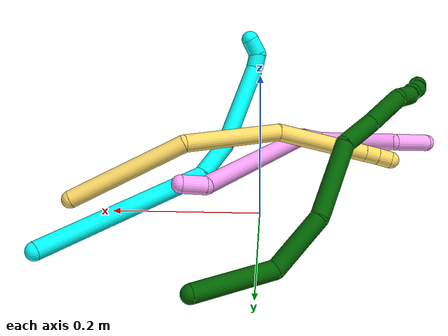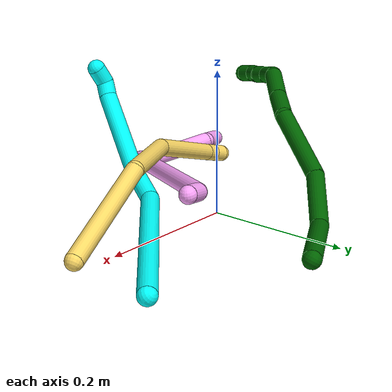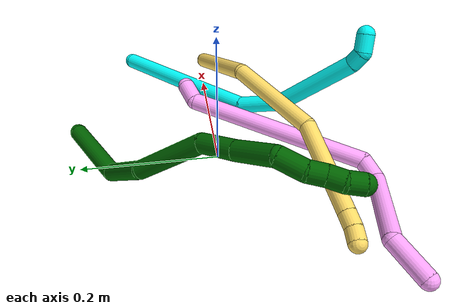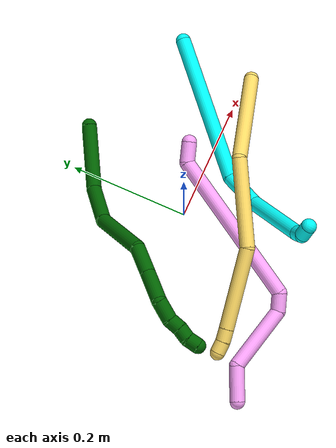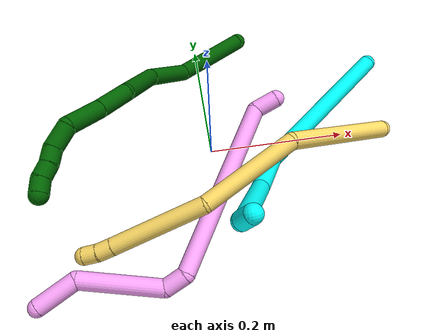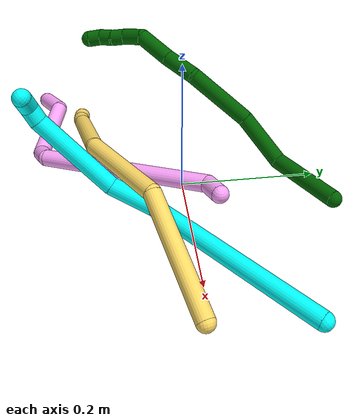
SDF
<sdf version="1.7">
 <world name="default">
  <model name="photoneo_s_sensor">
   <static>1</static>
   <pose>0 0 2 1.57079 1.57079 3.14159</pose>
   <link name="link">
    <inertial><mass>0.1</mass></inertial>
    <sensor name="sensor" type="depth">
     <update_rate>30</update_rate>
     <camera>
      <horizontal_fov>1.22</horizontal_fov>
      <image><width>1920</width><height>1200</height><format>B8G8R8</format></image>
      <clip><near>0.1</near><far>4</far></clip>
      <depth_camera><output>points</output></depth_camera>
     </camera>
     <plugin name="camera_plugin" filename="libgazebo_ros_depth_camera.so">
      <baseline>0.2</baseline>
      <alwaysOn>1</alwaysOn>
      <updateRate>0.0</updateRate>
      <cameraName>camera_ir</cameraName>
      <imageTopicName>/camera/color/image_raw</imageTopicName>
      <cameraInfoTopicName>/camera/color/camera_info</cameraInfoTopicName>
      <depthImageTopicName>/camera/depth/image_raw</depthImageTopicName>
      <depthImageCameraInfoTopicName>/camera/depth/camera_info</depthImageCameraInfoTopicName>
      <pointCloudTopicName>/camera/depth/points</pointCloudTopicName>
      <frameName>fr_optical</frameName>
      <pointCloudCutoff>0.1</pointCloudCutoff>
      <pointCloudCutoffMax>2.0</pointCloudCutoffMax>
      <distortionK1>0</distortionK1>
      <distortionK2>0</distortionK2>
      <distortionK3>0</distortionK3>
      <distortionT1>0</distortionT1>
      <distortionT2>0</distortionT2>
      <CxPrime>0</CxPrime>
      <Cx>0</Cx>
      <Cy>0</Cy>
      <focalLength>0</focalLength>
      <hackBaseline>0</hackBaseline>
     </plugin>
    </sensor>
   </link>
  </model>
  <model name="bin">
   <static>1</static>
   <link name="bottom">
    <collision name="collision-bottom">
     <pose>0 0 -0.01 0 -0 0</pose>
     <geometry><box><size>0.8 0.6 0.02</size></box></geometry>
     <surface>
      <friction><ode><mu>100</mu><mu2>100</mu2></ode></friction>
      <contact><collide_bitmask>65535</collide_bitmask></contact>
     </surface>
    </collision>
   </link>
   <link name="west_wall">
    <collision name="collision-west_wall">
     <pose>-0.41 0 0.1 0 -0 0</pose>
     <geometry><box><size>0.02 0.6 0.2</size></box></geometry>
     <surface>
      <friction><ode><mu>100</mu><mu2>100</mu2></ode></friction>
      <contact><collide_bitmask>65535</collide_bitmask></contact>
     </surface>
    </collision>
   </link>
   <link name="east_wall">
    <collision name="collision-east_wall">
     <pose>0.41 0 0.1 0 -0 0</pose>
     <geometry><box><size>0.02 0.6 0.2</size></box></geometry>
     <surface>
      <friction><ode><mu>100</mu><mu2>100</mu2></ode></friction>
      <contact><collide_bitmask>65535</collide_bitmask></contact>
     </surface>
    </collision>
   </link>
   <link name="south_wall">
    <collision name="collision-south_wall">
     <pose>0 -0.31 0.1 0 -0 0</pose>
     <geometry><box><size>0.8 0.02 0.2</size></box></geometry>
     <surface>
      <friction><ode><mu>100</mu><mu2>100</mu2></ode></friction>
      <contact><collide_bitmask>65535</collide_bitmask></contact>
     </surface>
    </collision>
   </link>
   <link name="north_wall">
    <collision name="collision-north_wall">
     <pose>0 0.31 0.1 0 -0 0</pose>
     <geometry><box><size>0.8 0.02 0.2</size></box></geometry>
     <surface>
      <friction><ode><mu>100</mu><mu2>100</mu2></ode></friction>
      <contact><collide_bitmask>65535</collide_bitmask></contact>
     </surface>
    </collision>
   </link>
  </model>
  <model name="3">
   <static>0</static>
   <link name="3">
    <collision name="collision-cylinder-e_1_1_4">
     <pose>-0.091901 -0.077048 -0.049959 2.14606 -0.785798 -1.30314</pose>
     <geometry><cylinder><radius>0.0125</radius><length>0.259832</length></cylinder></geometry>
     <surface>
      <friction><ode><mu>1.16</mu><mu2>1.16</mu2><slip1>0</slip1><slip2>0</slip2></ode></friction>
      <contact><ode><kp>1e+06</kp><kd>1</kd><max_vel>0</max_vel><min_depth>0.001</min_depth></ode></contact>
     </surface>
    </collision>
    <visual name="visual-cylinder-e_1_1_4">
     <pose>-0.091901 -0.077048 -0.049959 2.14606 -0.785798 -1.30314</pose>
     <geometry><cylinder><radius>0.0125</radius><length>0.259832</length></cylinder></geometry>
     <material><ambient>0.003922 1 0.996078 1</ambient></material>
    </visual>
    <collision name="collision-cylinder-e_2_4_5">
     <pose>-0.195738 -0.181163 -0.113716 2.0422 -0.374344 -0.599588</pose>
     <geometry><cylinder><radius>0.0125</radius><length>0.065282</length></cylinder></geometry>
     <surface>
      <friction><ode><mu>1.16</mu><mu2>1.16</mu2><slip1>0</slip1><slip2>0</slip2></ode></friction>
      <contact><ode><kp>1e+06</kp><kd>1</kd><max_vel>0</max_vel><min_depth>0.001</min_depth></ode></contact>
     </surface>
    </collision>
    <visual name="visual-cylinder-e_2_4_5">
     <pose>-0.195738 -0.181163 -0.113716 2.0422 -0.374344 -0.599588</pose>
     <geometry><cylinder><radius>0.0125</radius><length>0.065282</length></cylinder></geometry>
     <material><ambient>0.003922 1 0.996078 1</ambient></material>
    </visual>
    <collision name="collision-cylinder-e_3_5_6">
     <pose>-0.218154 -0.271271 -0.132957 1.65695 -0.164149 -0.178862</pose>
     <geometry><cylinder><radius>0.0125</radius><length>0.128275</length></cylinder></geometry>
     <surface>
      <friction><ode><mu>1.16</mu><mu2>1.16</mu2><slip1>0</slip1><slip2>0</slip2></ode></friction>
      <contact><ode><kp>1e+06</kp><kd>1</kd><max_vel>0</max_vel><min_depth>0.001</min_depth></ode></contact>
     </surface>
    </collision>
    <visual name="visual-cylinder-e_3_5_6">
     <pose>-0.218154 -0.271271 -0.132957 1.65695 -0.164149 -0.178862</pose>
     <geometry><cylinder><radius>0.0125</radius><length>0.128275</length></cylinder></geometry>
     <material><ambient>0.003922 1 0.996078 1</ambient></material>
    </visual>
    <collision name="collision-cylinder-e_4_6_7">
     <pose>-0.228964 -0.345013 -0.136251 1.37245 -0.030143 -0.024688</pose>
     <geometry><cylinder><radius>0.0125</radius><length>0.021841</length></cylinder></geometry>
     <surface>
      <friction><ode><mu>1.16</mu><mu2>1.16</mu2><slip1>0</slip1><slip2>0</slip2></ode></friction>
      <contact><ode><kp>1e+06</kp><kd>1</kd><max_vel>0</max_vel><min_depth>0.001</min_depth></ode></contact>
     </surface>
    </collision>
    <visual name="visual-cylinder-e_4_6_7">
     <pose>-0.228964 -0.345013 -0.136251 1.37245 -0.030143 -0.024688</pose>
     <geometry><cylinder><radius>0.0125</radius><length>0.021841</length></cylinder></geometry>
     <material><ambient>0.003922 1 0.996078 1</ambient></material>
    </visual>
    <collision name="collision-cylinder-e_5_7_2">
     <pose>-0.221511 -0.364468 -0.130075 1.13973 0.679452 0.445423</pose>
     <geometry><cylinder><radius>0.0125</radius><length>0.02477</length></cylinder></geometry>
     <surface>
      <friction><ode><mu>1.16</mu><mu2>1.16</mu2><slip1>0</slip1><slip2>0</slip2></ode></friction>
      <contact><ode><kp>1e+06</kp><kd>1</kd><max_vel>0</max_vel><min_depth>0.001</min_depth></ode></contact>
     </surface>
    </collision>
    <visual name="visual-cylinder-e_5_7_2">
     <pose>-0.221511 -0.364468 -0.130075 1.13973 0.679452 0.445423</pose>
     <geometry><cylinder><radius>0.0125</radius><length>0.02477</length></cylinder></geometry>
     <material><ambient>0.003922 1 0.996078 1</ambient></material>
    </visual>
    <collision name="collision-sphere-2">
     <pose>-0.213729 -0.373221 -0.126049 0 -0 0</pose>
     <geometry><sphere><radius>0.0125</radius></sphere></geometry>
     <surface>
      <friction><ode><mu>1.16</mu><mu2>1.16</mu2><slip1>0</slip1><slip2>0</slip2></ode></friction>
      <contact><ode><kp>1e+06</kp><kd>1</kd><max_vel>0</max_vel><min_depth>0.001</min_depth></ode></contact>
     </surface>
    </collision>
    <visual name="visual-sphere-2">
     <pose>-0.213729 -0.373221 -0.126049 0 -0 0</pose>
     <geometry><sphere><radius>0.0125</radius></sphere></geometry>
     <material><ambient>0.003922 1 0.996078 1</ambient></material>
    </visual>
    <collision name="collision-sphere-7">
     <pose>-0.229294 -0.355715 -0.1341 0 -0 0</pose>
     <geometry><sphere><radius>0.0125</radius></sphere></geometry>
     <surface>
      <friction><ode><mu>1.16</mu><mu2>1.16</mu2><slip1>0</slip1><slip2>0</slip2></ode></friction>
      <contact><ode><kp>1e+06</kp><kd>1</kd><max_vel>0</max_vel><min_depth>0.001</min_depth></ode></contact>
     </surface>
    </collision>
    <visual name="visual-sphere-7">
     <pose>-0.229294 -0.355715 -0.1341 0 -0 0</pose>
     <geometry><sphere><radius>0.0125</radius></sphere></geometry>
     <material><ambient>0.003922 1 0.996078 1</ambient></material>
    </visual>
    <collision name="collision-sphere-6">
     <pose>-0.228635 -0.334311 -0.138402 0 -0 0</pose>
     <geometry><sphere><radius>0.0125</radius></sphere></geometry>
     <surface>
      <friction><ode><mu>1.16</mu><mu2>1.16</mu2><slip1>0</slip1><slip2>0</slip2></ode></friction>
      <contact><ode><kp>1e+06</kp><kd>1</kd><max_vel>0</max_vel><min_depth>0.001</min_depth></ode></contact>
     </surface>
    </collision>
    <visual name="visual-sphere-6">
     <pose>-0.228635 -0.334311 -0.138402 0 -0 0</pose>
     <geometry><sphere><radius>0.0125</radius></sphere></geometry>
     <material><ambient>0.003922 1 0.996078 1</ambient></material>
    </visual>
    <collision name="collision-sphere-5">
     <pose>-0.207673 -0.20823 -0.127513 0 -0 0</pose>
     <geometry><sphere><radius>0.0125</radius></sphere></geometry>
     <surface>
      <friction><ode><mu>1.16</mu><mu2>1.16</mu2><slip1>0</slip1><slip2>0</slip2></ode></friction>
      <contact><ode><kp>1e+06</kp><kd>1</kd><max_vel>0</max_vel><min_depth>0.001</min_depth></ode></contact>
     </surface>
    </collision>
    <visual name="visual-sphere-5">
     <pose>-0.207673 -0.20823 -0.127513 0 -0 0</pose>
     <geometry><sphere><radius>0.0125</radius></sphere></geometry>
     <material><ambient>0.003922 1 0.996078 1</ambient></material>
    </visual>
    <collision name="collision-sphere-1">
     <geometry><sphere><radius>0.0125</radius></sphere></geometry>
     <surface>
      <friction><ode><mu>1.16</mu><mu2>1.16</mu2><slip1>0</slip1><slip2>0</slip2></ode></friction>
      <contact><ode><kp>1e+06</kp><kd>1</kd><max_vel>0</max_vel><min_depth>0.001</min_depth></ode></contact>
     </surface>
    </collision>
    <visual name="visual-sphere-1">
     <geometry><sphere><radius>0.0125</radius></sphere></geometry>
     <material><ambient>0.003922 1 0.996078 1</ambient></material>
    </visual>
    <collision name="collision-sphere-4">
     <pose>-0.183802 -0.154095 -0.099919 0 -0 0</pose>
     <geometry><sphere><radius>0.0125</radius></sphere></geometry>
     <surface>
      <friction><ode><mu>1.16</mu><mu2>1.16</mu2><slip1>0</slip1><slip2>0</slip2></ode></friction>
      <contact><ode><kp>1e+06</kp><kd>1</kd><max_vel>0</max_vel><min_depth>0.001</min_depth></ode></contact>
     </surface>
    </collision>
    <visual name="visual-sphere-4">
     <pose>-0.183802 -0.154095 -0.099919 0 -0 0</pose>
     <geometry><sphere><radius>0.0125</radius></sphere></geometry>
     <material><ambient>0.003922 1 0.996078 1</ambient></material>
    </visual>
    <inertial>
     <pose>-0.150257 -0.166413 -0.087315 0 -0 0</pose>
     <mass>0.5</mass>
     <inertia>
      <ixx>-0.000591</ixx>
      <ixy>0</ixy>
      <ixz>0</ixz>
      <iyy>-0.00046</iyy>
      <iyz>0</iyz>
      <izz>0.002144</izz>
     </inertia>
    </inertial>
   </link>
   <pose>0.275532 0.124373 0.012359 -0.892134 -0.198954 -0.010146</pose>
  </model>
  <model name="4">
   <static>0</static>
   <link name="4">
    <collision name="collision-cylinder-e_1_1_4">
     <pose>0.014932 -0.004287 0.007168 0.539025 1.06082 0.321215</pose>
     <geometry><cylinder><radius>0.0125</radius><length>0.034218</length></cylinder></geometry>
     <surface>
      <friction><ode><mu>1.16</mu><mu2>1.16</mu2><slip1>0</slip1><slip2>0</slip2></ode></friction>
      <contact><ode><kp>1e+06</kp><kd>1</kd><max_vel>0</max_vel><min_depth>0.001</min_depth></ode></contact>
     </surface>
    </collision>
    <visual name="visual-cylinder-e_1_1_4">
     <pose>0.014932 -0.004287 0.007168 0.539025 1.06082 0.321215</pose>
     <geometry><cylinder><radius>0.0125</radius><length>0.034218</length></cylinder></geometry>
     <material><ambient>1 0.65098 0.996078 1</ambient></material>
    </visual>
    <collision name="collision-cylinder-e_2_4_5">
     <pose>0.096058 -0.116804 0.046192 1.28454 0.530592 0.401042</pose>
     <geometry><cylinder><radius>0.0125</radius><length>0.261611</length></cylinder></geometry>
     <surface>
      <friction><ode><mu>1.16</mu><mu2>1.16</mu2><slip1>0</slip1><slip2>0</slip2></ode></friction>
      <contact><ode><kp>1e+06</kp><kd>1</kd><max_vel>0</max_vel><min_depth>0.001</min_depth></ode></contact>
     </surface>
    </collision>
    <visual name="visual-cylinder-e_2_4_5">
     <pose>0.096058 -0.116804 0.046192 1.28454 0.530592 0.401042</pose>
     <geometry><cylinder><radius>0.0125</radius><length>0.261611</length></cylinder></geometry>
     <material><ambient>1 0.65098 0.996078 1</ambient></material>
    </visual>
    <collision name="collision-cylinder-e_3_5_6">
     <pose>0.17502 -0.229243 0.086276 0.472941 0.944295 0.244891</pose>
     <geometry><cylinder><radius>0.0125</radius><length>0.031525</length></cylinder></geometry>
     <surface>
      <friction><ode><mu>1.16</mu><mu2>1.16</mu2><slip1>0</slip1><slip2>0</slip2></ode></friction>
      <contact><ode><kp>1e+06</kp><kd>1</kd><max_vel>0</max_vel><min_depth>0.001</min_depth></ode></contact>
     </surface>
    </collision>
    <visual name="visual-cylinder-e_3_5_6">
     <pose>0.17502 -0.229243 0.086276 0.472941 0.944295 0.244891</pose>
     <geometry><cylinder><radius>0.0125</radius><length>0.031525</length></cylinder></geometry>
     <material><ambient>1 0.65098 0.996078 1</ambient></material>
    </visual>
    <collision name="collision-cylinder-e_4_6_7">
     <pose>0.242375 -0.217885 0.101776 -1.13377 1.26584 -0.873794</pose>
     <geometry><cylinder><radius>0.0125</radius><length>0.114452</length></cylinder></geometry>
     <surface>
      <friction><ode><mu>1.16</mu><mu2>1.16</mu2><slip1>0</slip1><slip2>0</slip2></ode></friction>
      <contact><ode><kp>1e+06</kp><kd>1</kd><max_vel>0</max_vel><min_depth>0.001</min_depth></ode></contact>
     </surface>
    </collision>
    <visual name="visual-cylinder-e_4_6_7">
     <pose>0.242375 -0.217885 0.101776 -1.13377 1.26584 -0.873794</pose>
     <geometry><cylinder><radius>0.0125</radius><length>0.114452</length></cylinder></geometry>
     <material><ambient>1 0.65098 0.996078 1</ambient></material>
    </visual>
    <collision name="collision-cylinder-e_5_7_2">
     <pose>0.321329 -0.212983 0.12084 0.735256 0.992701 0.411263</pose>
     <geometry><cylinder><radius>0.0125</radius><length>0.058193</length></cylinder></geometry>
     <surface>
      <friction><ode><mu>1.16</mu><mu2>1.16</mu2><slip1>0</slip1><slip2>0</slip2></ode></friction>
      <contact><ode><kp>1e+06</kp><kd>1</kd><max_vel>0</max_vel><min_depth>0.001</min_depth></ode></contact>
     </surface>
    </collision>
    <visual name="visual-cylinder-e_5_7_2">
     <pose>0.321329 -0.212983 0.12084 0.735256 0.992701 0.411263</pose>
     <geometry><cylinder><radius>0.0125</radius><length>0.058193</length></cylinder></geometry>
     <material><ambient>1 0.65098 0.996078 1</ambient></material>
    </visual>
    <collision name="collision-sphere-2">
     <pose>0.345698 -0.223648 0.132632 0 -0 0</pose>
     <geometry><sphere><radius>0.0125</radius></sphere></geometry>
     <surface>
      <friction><ode><mu>1.16</mu><mu2>1.16</mu2><slip1>0</slip1><slip2>0</slip2></ode></friction>
      <contact><ode><kp>1e+06</kp><kd>1</kd><max_vel>0</max_vel><min_depth>0.001</min_depth></ode></contact>
     </surface>
    </collision>
    <visual name="visual-sphere-2">
     <pose>0.345698 -0.223648 0.132632 0 -0 0</pose>
     <geometry><sphere><radius>0.0125</radius></sphere></geometry>
     <material><ambient>1 0.65098 0.996078 1</ambient></material>
    </visual>
    <collision name="collision-sphere-7">
     <pose>0.296961 -0.202318 0.109048 0 -0 0</pose>
     <geometry><sphere><radius>0.0125</radius></sphere></geometry>
     <surface>
      <friction><ode><mu>1.16</mu><mu2>1.16</mu2><slip1>0</slip1><slip2>0</slip2></ode></friction>
      <contact><ode><kp>1e+06</kp><kd>1</kd><max_vel>0</max_vel><min_depth>0.001</min_depth></ode></contact>
     </surface>
    </collision>
    <visual name="visual-sphere-7">
     <pose>0.296961 -0.202318 0.109048 0 -0 0</pose>
     <geometry><sphere><radius>0.0125</radius></sphere></geometry>
     <material><ambient>1 0.65098 0.996078 1</ambient></material>
    </visual>
    <collision name="collision-sphere-6">
     <pose>0.187789 -0.233453 0.094504 0 -0 0</pose>
     <geometry><sphere><radius>0.0125</radius></sphere></geometry>
     <surface>
      <friction><ode><mu>1.16</mu><mu2>1.16</mu2><slip1>0</slip1><slip2>0</slip2></ode></friction>
      <contact><ode><kp>1e+06</kp><kd>1</kd><max_vel>0</max_vel><min_depth>0.001</min_depth></ode></contact>
     </surface>
    </collision>
    <visual name="visual-sphere-6">
     <pose>0.187789 -0.233453 0.094504 0 -0 0</pose>
     <geometry><sphere><radius>0.0125</radius></sphere></geometry>
     <material><ambient>1 0.65098 0.996078 1</ambient></material>
    </visual>
    <collision name="collision-sphere-5">
     <pose>0.162251 -0.225033 0.078049 0 -0 0</pose>
     <geometry><sphere><radius>0.0125</radius></sphere></geometry>
     <surface>
      <friction><ode><mu>1.16</mu><mu2>1.16</mu2><slip1>0</slip1><slip2>0</slip2></ode></friction>
      <contact><ode><kp>1e+06</kp><kd>1</kd><max_vel>0</max_vel><min_depth>0.001</min_depth></ode></contact>
     </surface>
    </collision>
    <visual name="visual-sphere-5">
     <pose>0.162251 -0.225033 0.078049 0 -0 0</pose>
     <geometry><sphere><radius>0.0125</radius></sphere></geometry>
     <material><ambient>1 0.65098 0.996078 1</ambient></material>
    </visual>
    <collision name="collision-sphere-1">
     <geometry><sphere><radius>0.0125</radius></sphere></geometry>
     <surface>
      <friction><ode><mu>1.16</mu><mu2>1.16</mu2><slip1>0</slip1><slip2>0</slip2></ode></friction>
      <contact><ode><kp>1e+06</kp><kd>1</kd><max_vel>0</max_vel><min_depth>0.001</min_depth></ode></contact>
     </surface>
    </collision>
    <visual name="visual-sphere-1">
     <geometry><sphere><radius>0.0125</radius></sphere></geometry>
     <material><ambient>1 0.65098 0.996078 1</ambient></material>
    </visual>
    <collision name="collision-sphere-4">
     <pose>0.029864 -0.008574 0.014335 0 -0 0</pose>
     <geometry><sphere><radius>0.0125</radius></sphere></geometry>
     <surface>
      <friction><ode><mu>1.16</mu><mu2>1.16</mu2><slip1>0</slip1><slip2>0</slip2></ode></friction>
      <contact><ode><kp>1e+06</kp><kd>1</kd><max_vel>0</max_vel><min_depth>0.001</min_depth></ode></contact>
     </surface>
    </collision>
    <visual name="visual-sphere-4">
     <pose>0.029864 -0.008574 0.014335 0 -0 0</pose>
     <geometry><sphere><radius>0.0125</radius></sphere></geometry>
     <material><ambient>1 0.65098 0.996078 1</ambient></material>
    </visual>
    <inertial>
     <pose>0.155196 -0.150525 0.06746 0 -0 0</pose>
     <mass>0.5</mass>
     <inertia>
      <ixx>0.00174</ixx>
      <ixy>0</ixy>
      <ixz>0</ixz>
      <iyy>0.001285</iyy>
      <iyz>0</iyz>
      <izz>0.000321</izz>
     </inertia>
    </inertial>
   </link>
   <pose>0.101809 0.035637 0.062665 3.14032 -0.228469 -3.0851</pose>
  </model>
  <model name="5">
   <static>0</static>
   <link name="5">
    <collision name="collision-cylinder-e_1_1_4">
     <pose>-0.033682 -0.011373 0.079216 0.142599 -0.398368 -0.028832</pose>
     <geometry><cylinder><radius>0.0125</radius><length>0.173655</length></cylinder></geometry>
     <surface>
      <friction><ode><mu>1.16</mu><mu2>1.16</mu2><slip1>0</slip1><slip2>0</slip2></ode></friction>
      <contact><ode><kp>1e+06</kp><kd>1</kd><max_vel>0</max_vel><min_depth>0.001</min_depth></ode></contact>
     </surface>
    </collision>
    <visual name="visual-cylinder-e_1_1_4">
     <pose>-0.033682 -0.011373 0.079216 0.142599 -0.398368 -0.028832</pose>
     <geometry><cylinder><radius>0.0125</radius><length>0.173655</length></cylinder></geometry>
     <material><ambient>1 0.858824 0.4 1</ambient></material>
    </visual>
    <collision name="collision-cylinder-e_2_4_5">
     <pose>-0.119298 -0.052931 0.20238 0.601824 -0.772279 -0.251007</pose>
     <geometry><cylinder><radius>0.0125</radius><length>0.148858</length></cylinder></geometry>
     <surface>
      <friction><ode><mu>1.16</mu><mu2>1.16</mu2><slip1>0</slip1><slip2>0</slip2></ode></friction>
      <contact><ode><kp>1e+06</kp><kd>1</kd><max_vel>0</max_vel><min_depth>0.001</min_depth></ode></contact>
     </surface>
    </collision>
    <visual name="visual-cylinder-e_2_4_5">
     <pose>-0.119298 -0.052931 0.20238 0.601824 -0.772279 -0.251007</pose>
     <geometry><cylinder><radius>0.0125</radius><length>0.148858</length></cylinder></geometry>
     <material><ambient>1 0.858824 0.4 1</ambient></material>
    </visual>
    <collision name="collision-cylinder-e_3_5_6">
     <pose>-0.231955 -0.089582 0.275865 0.21554 -1.10881 -0.133777</pose>
     <geometry><cylinder><radius>0.0125</radius><length>0.13567</length></cylinder></geometry>
     <surface>
      <friction><ode><mu>1.16</mu><mu2>1.16</mu2><slip1>0</slip1><slip2>0</slip2></ode></friction>
      <contact><ode><kp>1e+06</kp><kd>1</kd><max_vel>0</max_vel><min_depth>0.001</min_depth></ode></contact>
     </surface>
    </collision>
    <visual name="visual-cylinder-e_3_5_6">
     <pose>-0.231955 -0.089582 0.275865 0.21554 -1.10881 -0.133777</pose>
     <geometry><cylinder><radius>0.0125</radius><length>0.13567</length></cylinder></geometry>
     <material><ambient>1 0.858824 0.4 1</ambient></material>
    </visual>
    <collision name="collision-cylinder-e_4_6_7">
     <pose>-0.302316 -0.096863 0.310163 0.169294 -1.10613 -0.104664</pose>
     <geometry><cylinder><radius>0.0125</radius><length>0.02156</length></cylinder></geometry>
     <surface>
      <friction><ode><mu>1.16</mu><mu2>1.16</mu2><slip1>0</slip1><slip2>0</slip2></ode></friction>
      <contact><ode><kp>1e+06</kp><kd>1</kd><max_vel>0</max_vel><min_depth>0.001</min_depth></ode></contact>
     </surface>
    </collision>
    <visual name="visual-cylinder-e_4_6_7">
     <pose>-0.302316 -0.096863 0.310163 0.169294 -1.10613 -0.104664</pose>
     <geometry><cylinder><radius>0.0125</radius><length>0.02156</length></cylinder></geometry>
     <material><ambient>1 0.858824 0.4 1</ambient></material>
    </visual>
    <collision name="collision-cylinder-e_5_7_2">
     <pose>-0.320937 -0.096631 0.319483 -0.225461 -1.09081 0.137176</pose>
     <geometry><cylinder><radius>0.0125</radius><length>0.020257</length></cylinder></geometry>
     <surface>
      <friction><ode><mu>1.16</mu><mu2>1.16</mu2><slip1>0</slip1><slip2>0</slip2></ode></friction>
      <contact><ode><kp>1e+06</kp><kd>1</kd><max_vel>0</max_vel><min_depth>0.001</min_depth></ode></contact>
     </surface>
    </collision>
    <visual name="visual-cylinder-e_5_7_2">
     <pose>-0.320937 -0.096631 0.319483 -0.225461 -1.09081 0.137176</pose>
     <geometry><cylinder><radius>0.0125</radius><length>0.020257</length></cylinder></geometry>
     <material><ambient>1 0.858824 0.4 1</ambient></material>
    </visual>
    <collision name="collision-sphere-2">
     <pose>-0.329921 -0.095585 0.324042 0 -0 0</pose>
     <geometry><sphere><radius>0.0125</radius></sphere></geometry>
     <surface>
      <friction><ode><mu>1.16</mu><mu2>1.16</mu2><slip1>0</slip1><slip2>0</slip2></ode></friction>
      <contact><ode><kp>1e+06</kp><kd>1</kd><max_vel>0</max_vel><min_depth>0.001</min_depth></ode></contact>
     </surface>
    </collision>
    <visual name="visual-sphere-2">
     <pose>-0.329921 -0.095585 0.324042 0 -0 0</pose>
     <geometry><sphere><radius>0.0125</radius></sphere></geometry>
     <material><ambient>1 0.858824 0.4 1</ambient></material>
    </visual>
    <collision name="collision-sphere-7">
     <pose>-0.311953 -0.097677 0.314925 0 -0 0</pose>
     <geometry><sphere><radius>0.0125</radius></sphere></geometry>
     <surface>
      <friction><ode><mu>1.16</mu><mu2>1.16</mu2><slip1>0</slip1><slip2>0</slip2></ode></friction>
      <contact><ode><kp>1e+06</kp><kd>1</kd><max_vel>0</max_vel><min_depth>0.001</min_depth></ode></contact>
     </surface>
    </collision>
    <visual name="visual-sphere-7">
     <pose>-0.311953 -0.097677 0.314925 0 -0 0</pose>
     <geometry><sphere><radius>0.0125</radius></sphere></geometry>
     <material><ambient>1 0.858824 0.4 1</ambient></material>
    </visual>
    <collision name="collision-sphere-6">
     <pose>-0.292679 -0.096049 0.305401 0 -0 0</pose>
     <geometry><sphere><radius>0.0125</radius></sphere></geometry>
     <surface>
      <friction><ode><mu>1.16</mu><mu2>1.16</mu2><slip1>0</slip1><slip2>0</slip2></ode></friction>
      <contact><ode><kp>1e+06</kp><kd>1</kd><max_vel>0</max_vel><min_depth>0.001</min_depth></ode></contact>
     </surface>
    </collision>
    <visual name="visual-sphere-6">
     <pose>-0.292679 -0.096049 0.305401 0 -0 0</pose>
     <geometry><sphere><radius>0.0125</radius></sphere></geometry>
     <material><ambient>1 0.858824 0.4 1</ambient></material>
    </visual>
    <collision name="collision-sphere-5">
     <pose>-0.171232 -0.083115 0.246328 0 -0 0</pose>
     <geometry><sphere><radius>0.0125</radius></sphere></geometry>
     <surface>
      <friction><ode><mu>1.16</mu><mu2>1.16</mu2><slip1>0</slip1><slip2>0</slip2></ode></friction>
      <contact><ode><kp>1e+06</kp><kd>1</kd><max_vel>0</max_vel><min_depth>0.001</min_depth></ode></contact>
     </surface>
    </collision>
    <visual name="visual-sphere-5">
     <pose>-0.171232 -0.083115 0.246328 0 -0 0</pose>
     <geometry><sphere><radius>0.0125</radius></sphere></geometry>
     <material><ambient>1 0.858824 0.4 1</ambient></material>
    </visual>
    <collision name="collision-sphere-1">
     <geometry><sphere><radius>0.0125</radius></sphere></geometry>
     <surface>
      <friction><ode><mu>1.16</mu><mu2>1.16</mu2><slip1>0</slip1><slip2>0</slip2></ode></friction>
      <contact><ode><kp>1e+06</kp><kd>1</kd><max_vel>0</max_vel><min_depth>0.001</min_depth></ode></contact>
     </surface>
    </collision>
    <visual name="visual-sphere-1">
     <geometry><sphere><radius>0.0125</radius></sphere></geometry>
     <material><ambient>1 0.858824 0.4 1</ambient></material>
    </visual>
    <collision name="collision-sphere-4">
     <pose>-0.067363 -0.022747 0.158432 0 -0 0</pose>
     <geometry><sphere><radius>0.0125</radius></sphere></geometry>
     <surface>
      <friction><ode><mu>1.16</mu><mu2>1.16</mu2><slip1>0</slip1><slip2>0</slip2></ode></friction>
      <contact><ode><kp>1e+06</kp><kd>1</kd><max_vel>0</max_vel><min_depth>0.001</min_depth></ode></contact>
     </surface>
    </collision>
    <visual name="visual-sphere-4">
     <pose>-0.067363 -0.022747 0.158432 0 -0 0</pose>
     <geometry><sphere><radius>0.0125</radius></sphere></geometry>
     <material><ambient>1 0.858824 0.4 1</ambient></material>
    </visual>
    <inertial>
     <pose>-0.136192 -0.052107 0.188935 0 -0 0</pose>
     <mass>0.5</mass>
     <inertia>
      <ixx>0.000599</ixx>
      <ixy>0</ixy>
      <ixz>0</ixz>
      <iyy>0.000824</iyy>
      <iyz>0</iyz>
      <izz>0.000779</izz>
     </inertia>
    </inertial>
   </link>
   <pose>0.26017 -0.00813 0.012174 0.14667 -0.750285 -0.008433</pose>
  </model>
  <model name="6">
   <static>0</static>
   <link name="6">
    <collision name="collision-cylinder-e_1_1_4">
     <pose>-0.052463 -0.01011 0.015263 0.585055 -1.23505 -0.421415</pose>
     <geometry><cylinder><radius>0.0125</radius><length>0.111131</length></cylinder></geometry>
     <surface>
      <friction><ode><mu>1.16</mu><mu2>1.16</mu2><slip1>0</slip1><slip2>0</slip2></ode></friction>
      <contact><ode><kp>1e+06</kp><kd>1</kd><max_vel>0</max_vel><min_depth>0.001</min_depth></ode></contact>
     </surface>
    </collision>
    <visual name="visual-cylinder-e_1_1_4">
     <pose>-0.052463 -0.01011 0.015263 0.585055 -1.23505 -0.421415</pose>
     <geometry><cylinder><radius>0.0125</radius><length>0.111131</length></cylinder></geometry>
     <material><ambient>0 0.392157 0.003922 1</ambient></material>
    </visual>
    <collision name="collision-cylinder-e_2_4_5">
     <pose>-0.128453 -0.041295 0.057566 0.662042 -0.601445 -0.212359</pose>
     <geometry><cylinder><radius>0.0125</radius><length>0.083159</length></cylinder></geometry>
     <surface>
      <friction><ode><mu>1.16</mu><mu2>1.16</mu2><slip1>0</slip1><slip2>0</slip2></ode></friction>
      <contact><ode><kp>1e+06</kp><kd>1</kd><max_vel>0</max_vel><min_depth>0.001</min_depth></ode></contact>
     </surface>
    </collision>
    <visual name="visual-cylinder-e_2_4_5">
     <pose>-0.128453 -0.041295 0.057566 0.662042 -0.601445 -0.212359</pose>
     <geometry><cylinder><radius>0.0125</radius><length>0.083159</length></cylinder></geometry>
     <material><ambient>0 0.392157 0.003922 1</ambient></material>
    </visual>
    <collision name="collision-cylinder-e_3_5_6">
     <pose>-0.171397 -0.104021 0.109876 1.02546 -0.379278 -0.215276</pose>
     <geometry><cylinder><radius>0.0125</radius><length>0.10489</length></cylinder></geometry>
     <surface>
      <friction><ode><mu>1.16</mu><mu2>1.16</mu2><slip1>0</slip1><slip2>0</slip2></ode></friction>
      <contact><ode><kp>1e+06</kp><kd>1</kd><max_vel>0</max_vel><min_depth>0.001</min_depth></ode></contact>
     </surface>
    </collision>
    <visual name="visual-cylinder-e_3_5_6">
     <pose>-0.171397 -0.104021 0.109876 1.02546 -0.379278 -0.215276</pose>
     <geometry><cylinder><radius>0.0125</radius><length>0.10489</length></cylinder></geometry>
     <material><ambient>0 0.392157 0.003922 1</ambient></material>
    </visual>
    <collision name="collision-cylinder-e_4_6_7">
     <pose>-0.210416 -0.158825 0.144843 0.93549 -0.87589 -0.464541</pose>
     <geometry><cylinder><radius>0.0125</radius><length>0.051036</length></cylinder></geometry>
     <surface>
      <friction><ode><mu>1.16</mu><mu2>1.16</mu2><slip1>0</slip1><slip2>0</slip2></ode></friction>
      <contact><ode><kp>1e+06</kp><kd>1</kd><max_vel>0</max_vel><min_depth>0.001</min_depth></ode></contact>
     </surface>
    </collision>
    <visual name="visual-cylinder-e_4_6_7">
     <pose>-0.210416 -0.158825 0.144843 0.93549 -0.87589 -0.464541</pose>
     <geometry><cylinder><radius>0.0125</radius><length>0.051036</length></cylinder></geometry>
     <material><ambient>0 0.392157 0.003922 1</ambient></material>
    </visual>
    <collision name="collision-cylinder-e_5_7_8">
     <pose>-0.249952 -0.186531 0.167101 0.858762 -0.803511 -0.384267</pose>
     <geometry><cylinder><radius>0.0125</radius><length>0.055391</length></cylinder></geometry>
     <surface>
      <friction><ode><mu>1.16</mu><mu2>1.16</mu2><slip1>0</slip1><slip2>0</slip2></ode></friction>
      <contact><ode><kp>1e+06</kp><kd>1</kd><max_vel>0</max_vel><min_depth>0.001</min_depth></ode></contact>
     </surface>
    </collision>
    <visual name="visual-cylinder-e_5_7_8">
     <pose>-0.249952 -0.186531 0.167101 0.858762 -0.803511 -0.384267</pose>
     <geometry><cylinder><radius>0.0125</radius><length>0.055391</length></cylinder></geometry>
     <material><ambient>0 0.392157 0.003922 1</ambient></material>
    </visual>
    <collision name="collision-cylinder-e_6_8_9">
     <pose>-0.284536 -0.208857 0.177914 1.79206 -1.07272 -1.27811</pose>
     <geometry><cylinder><radius>0.0125</radius><length>0.033349</length></cylinder></geometry>
     <surface>
      <friction><ode><mu>1.16</mu><mu2>1.16</mu2><slip1>0</slip1><slip2>0</slip2></ode></friction>
      <contact><ode><kp>1e+06</kp><kd>1</kd><max_vel>0</max_vel><min_depth>0.001</min_depth></ode></contact>
     </surface>
    </collision>
    <visual name="visual-cylinder-e_6_8_9">
     <pose>-0.284536 -0.208857 0.177914 1.79206 -1.07272 -1.27811</pose>
     <geometry><cylinder><radius>0.0125</radius><length>0.033349</length></cylinder></geometry>
     <material><ambient>0 0.392157 0.003922 1</ambient></material>
    </visual>
    <collision name="collision-cylinder-e_7_9_10">
     <pose>-0.30618 -0.223902 0.17353 1.9184 -0.735188 -1.00434</pose>
     <geometry><cylinder><radius>0.0125</radius><length>0.020859</length></cylinder></geometry>
     <surface>
      <friction><ode><mu>1.16</mu><mu2>1.16</mu2><slip1>0</slip1><slip2>0</slip2></ode></friction>
      <contact><ode><kp>1e+06</kp><kd>1</kd><max_vel>0</max_vel><min_depth>0.001</min_depth></ode></contact>
     </surface>
    </collision>
    <visual name="visual-cylinder-e_7_9_10">
     <pose>-0.30618 -0.223902 0.17353 1.9184 -0.735188 -1.00434</pose>
     <geometry><cylinder><radius>0.0125</radius><length>0.020859</length></cylinder></geometry>
     <material><ambient>0 0.392157 0.003922 1</ambient></material>
    </visual>
    <collision name="collision-cylinder-e_8_10_11">
     <pose>-0.32128 -0.237097 0.170027 1.71644 -0.934669 -1.05719</pose>
     <geometry><cylinder><radius>0.0125</radius><length>0.020151</length></cylinder></geometry>
     <surface>
      <friction><ode><mu>1.16</mu><mu2>1.16</mu2><slip1>0</slip1><slip2>0</slip2></ode></friction>
      <contact><ode><kp>1e+06</kp><kd>1</kd><max_vel>0</max_vel><min_depth>0.001</min_depth></ode></contact>
     </surface>
    </collision>
    <visual name="visual-cylinder-e_8_10_11">
     <pose>-0.32128 -0.237097 0.170027 1.71644 -0.934669 -1.05719</pose>
     <geometry><cylinder><radius>0.0125</radius><length>0.020151</length></cylinder></geometry>
     <material><ambient>0 0.392157 0.003922 1</ambient></material>
    </visual>
    <collision name="collision-cylinder-e_9_11_2">
     <pose>-0.335207 -0.250575 0.166099 1.95545 -0.620262 -0.887664</pose>
     <geometry><cylinder><radius>0.0125</radius><length>0.020034</length></cylinder></geometry>
     <surface>
      <friction><ode><mu>1.16</mu><mu2>1.16</mu2><slip1>0</slip1><slip2>0</slip2></ode></friction>
      <contact><ode><kp>1e+06</kp><kd>1</kd><max_vel>0</max_vel><min_depth>0.001</min_depth></ode></contact>
     </surface>
    </collision>
    <visual name="visual-cylinder-e_9_11_2">
     <pose>-0.335207 -0.250575 0.166099 1.95545 -0.620262 -0.887664</pose>
     <geometry><cylinder><radius>0.0125</radius><length>0.020034</length></cylinder></geometry>
     <material><ambient>0 0.392157 0.003922 1</ambient></material>
    </visual>
    <collision name="collision-sphere-2">
     <pose>-0.341029 -0.258131 0.163041 0 -0 0</pose>
     <geometry><sphere><radius>0.0125</radius></sphere></geometry>
     <surface>
      <friction><ode><mu>1.16</mu><mu2>1.16</mu2><slip1>0</slip1><slip2>0</slip2></ode></friction>
      <contact><ode><kp>1e+06</kp><kd>1</kd><max_vel>0</max_vel><min_depth>0.001</min_depth></ode></contact>
     </surface>
    </collision>
    <visual name="visual-sphere-2">
     <pose>-0.341029 -0.258131 0.163041 0 -0 0</pose>
     <geometry><sphere><radius>0.0125</radius></sphere></geometry>
     <material><ambient>0 0.392157 0.003922 1</ambient></material>
    </visual>
    <collision name="collision-sphere-11">
     <pose>-0.329384 -0.24302 0.169158 0 -0 0</pose>
     <geometry><sphere><radius>0.0125</radius></sphere></geometry>
     <surface>
      <friction><ode><mu>1.16</mu><mu2>1.16</mu2><slip1>0</slip1><slip2>0</slip2></ode></friction>
      <contact><ode><kp>1e+06</kp><kd>1</kd><max_vel>0</max_vel><min_depth>0.001</min_depth></ode></contact>
     </surface>
    </collision>
    <visual name="visual-sphere-11">
     <pose>-0.329384 -0.24302 0.169158 0 -0 0</pose>
     <geometry><sphere><radius>0.0125</radius></sphere></geometry>
     <material><ambient>0 0.392157 0.003922 1</ambient></material>
    </visual>
    <collision name="collision-sphere-10">
     <pose>-0.313175 -0.231175 0.170895 0 -0 0</pose>
     <geometry><sphere><radius>0.0125</radius></sphere></geometry>
     <surface>
      <friction><ode><mu>1.16</mu><mu2>1.16</mu2><slip1>0</slip1><slip2>0</slip2></ode></friction>
      <contact><ode><kp>1e+06</kp><kd>1</kd><max_vel>0</max_vel><min_depth>0.001</min_depth></ode></contact>
     </surface>
    </collision>
    <visual name="visual-sphere-10">
     <pose>-0.313175 -0.231175 0.170895 0 -0 0</pose>
     <geometry><sphere><radius>0.0125</radius></sphere></geometry>
     <material><ambient>0 0.392157 0.003922 1</ambient></material>
    </visual>
    <collision name="collision-sphere-9">
     <pose>-0.299184 -0.216629 0.176166 0 -0 0</pose>
     <geometry><sphere><radius>0.0125</radius></sphere></geometry>
     <surface>
      <friction><ode><mu>1.16</mu><mu2>1.16</mu2><slip1>0</slip1><slip2>0</slip2></ode></friction>
      <contact><ode><kp>1e+06</kp><kd>1</kd><max_vel>0</max_vel><min_depth>0.001</min_depth></ode></contact>
     </surface>
    </collision>
    <visual name="visual-sphere-9">
     <pose>-0.299184 -0.216629 0.176166 0 -0 0</pose>
     <geometry><sphere><radius>0.0125</radius></sphere></geometry>
     <material><ambient>0 0.392157 0.003922 1</ambient></material>
    </visual>
    <collision name="collision-sphere-4">
     <pose>-0.104926 -0.02022 0.030525 0 -0 0</pose>
     <geometry><sphere><radius>0.0125</radius></sphere></geometry>
     <surface>
      <friction><ode><mu>1.16</mu><mu2>1.16</mu2><slip1>0</slip1><slip2>0</slip2></ode></friction>
      <contact><ode><kp>1e+06</kp><kd>1</kd><max_vel>0</max_vel><min_depth>0.001</min_depth></ode></contact>
     </surface>
    </collision>
    <visual name="visual-sphere-4">
     <pose>-0.104926 -0.02022 0.030525 0 -0 0</pose>
     <geometry><sphere><radius>0.0125</radius></sphere></geometry>
     <material><ambient>0 0.392157 0.003922 1</ambient></material>
    </visual>
    <collision name="collision-sphere-1">
     <geometry><sphere><radius>0.0125</radius></sphere></geometry>
     <surface>
      <friction><ode><mu>1.16</mu><mu2>1.16</mu2><slip1>0</slip1><slip2>0</slip2></ode></friction>
      <contact><ode><kp>1e+06</kp><kd>1</kd><max_vel>0</max_vel><min_depth>0.001</min_depth></ode></contact>
     </surface>
    </collision>
    <visual name="visual-sphere-1">
     <geometry><sphere><radius>0.0125</radius></sphere></geometry>
     <material><ambient>0 0.392157 0.003922 1</ambient></material>
    </visual>
    <collision name="collision-sphere-8">
     <pose>-0.269887 -0.201085 0.179662 0 -0 0</pose>
     <geometry><sphere><radius>0.0125</radius></sphere></geometry>
     <surface>
      <friction><ode><mu>1.16</mu><mu2>1.16</mu2><slip1>0</slip1><slip2>0</slip2></ode></friction>
      <contact><ode><kp>1e+06</kp><kd>1</kd><max_vel>0</max_vel><min_depth>0.001</min_depth></ode></contact>
     </surface>
    </collision>
    <visual name="visual-sphere-8">
     <pose>-0.269887 -0.201085 0.179662 0 -0 0</pose>
     <geometry><sphere><radius>0.0125</radius></sphere></geometry>
     <material><ambient>0 0.392157 0.003922 1</ambient></material>
    </visual>
    <collision name="collision-sphere-5">
     <pose>-0.15198 -0.06237 0.084606 0 -0 0</pose>
     <geometry><sphere><radius>0.0125</radius></sphere></geometry>
     <surface>
      <friction><ode><mu>1.16</mu><mu2>1.16</mu2><slip1>0</slip1><slip2>0</slip2></ode></friction>
      <contact><ode><kp>1e+06</kp><kd>1</kd><max_vel>0</max_vel><min_depth>0.001</min_depth></ode></contact>
     </surface>
    </collision>
    <visual name="visual-sphere-5">
     <pose>-0.15198 -0.06237 0.084606 0 -0 0</pose>
     <geometry><sphere><radius>0.0125</radius></sphere></geometry>
     <material><ambient>0 0.392157 0.003922 1</ambient></material>
    </visual>
    <collision name="collision-sphere-6">
     <pose>-0.190815 -0.145673 0.135146 0 -0 0</pose>
     <geometry><sphere><radius>0.0125</radius></sphere></geometry>
     <surface>
      <friction><ode><mu>1.16</mu><mu2>1.16</mu2><slip1>0</slip1><slip2>0</slip2></ode></friction>
      <contact><ode><kp>1e+06</kp><kd>1</kd><max_vel>0</max_vel><min_depth>0.001</min_depth></ode></contact>
     </surface>
    </collision>
    <visual name="visual-sphere-6">
     <pose>-0.190815 -0.145673 0.135146 0 -0 0</pose>
     <geometry><sphere><radius>0.0125</radius></sphere></geometry>
     <material><ambient>0 0.392157 0.003922 1</ambient></material>
    </visual>
    <collision name="collision-sphere-7">
     <pose>-0.230017 -0.171976 0.154539 0 -0 0</pose>
     <geometry><sphere><radius>0.0125</radius></sphere></geometry>
     <surface>
      <friction><ode><mu>1.16</mu><mu2>1.16</mu2><slip1>0</slip1><slip2>0</slip2></ode></friction>
      <contact><ode><kp>1e+06</kp><kd>1</kd><max_vel>0</max_vel><min_depth>0.001</min_depth></ode></contact>
     </surface>
    </collision>
    <visual name="visual-sphere-7">
     <pose>-0.230017 -0.171976 0.154539 0 -0 0</pose>
     <geometry><sphere><radius>0.0125</radius></sphere></geometry>
     <material><ambient>0 0.392157 0.003922 1</ambient></material>
    </visual>
    <inertial>
     <pose>-0.176279 -0.110679 0.101926 0 -0 0</pose>
     <mass>0.5</mass>
     <inertia>
      <ixx>0.000104</ixx>
      <ixy>0</ixy>
      <ixz>0</ixz>
      <iyy>0.000168</iyy>
      <iyz>0</iyz>
      <izz>0.000367</izz>
     </inertia>
    </inertial>
   </link>
   <pose>0.073541 0.206567 0.011498 -0.422169 -0.331622 0.452516</pose>
  </model>
 </world>
</sdf>
